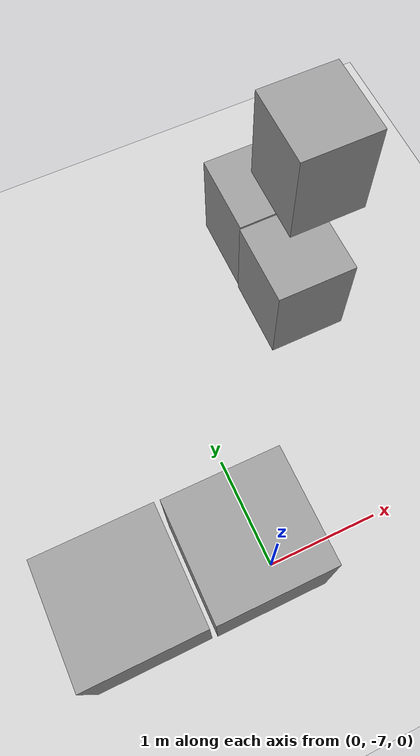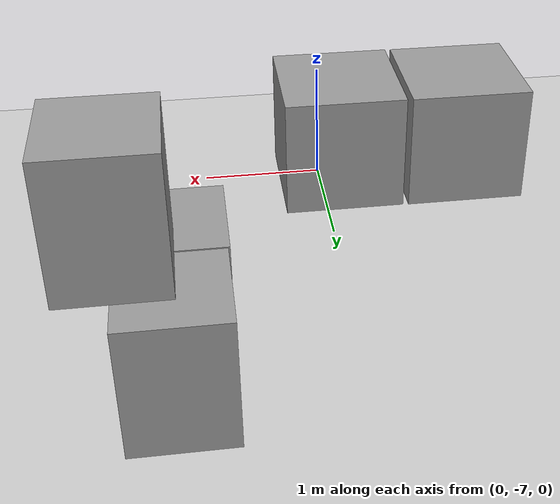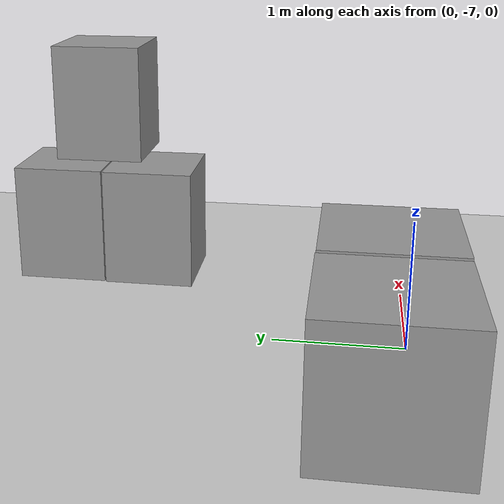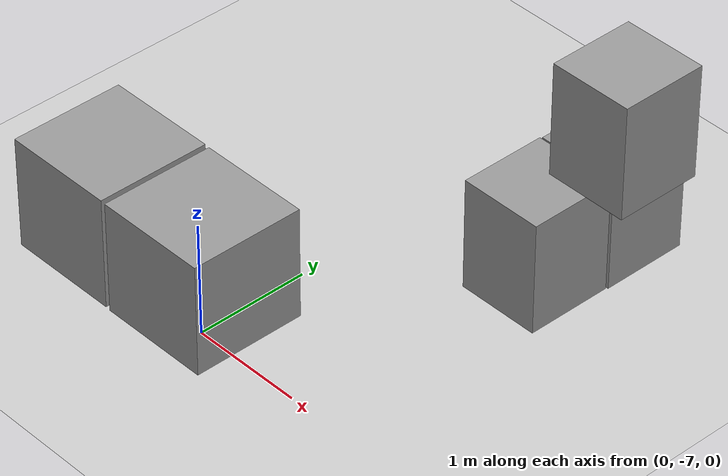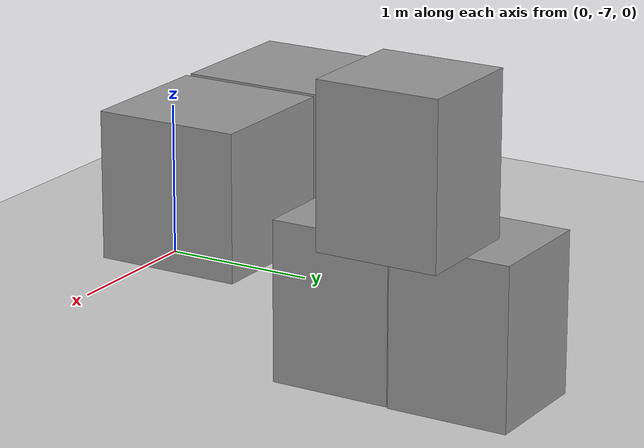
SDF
<sdf version="1.6">
 <world name="default">
  <model name="ground_plane">
   <static>1</static>
   <link name="link">
    <collision name="collision">
     <geometry><plane><normal>0 0 1</normal><size>100 100</size></plane></geometry>
     <surface><friction><ode><mu>100</mu><mu2>50</mu2></ode></friction></surface>
    </collision>
    <visual name="visual">
     <cast_shadows>0</cast_shadows>
     <geometry><plane><normal>0 0 1</normal><size>100 100</size></plane></geometry>
     <material>
      <script><uri>file://media/materials/scripts/gazebo.material</uri><name>Gazebo/Grey</name></script>
     </material>
    </visual>
   </link>
  </model>
  <model name="unit_box_5">
   <pose>-1.1995 -6.82663 0.499995 1e-05 -0 0</pose>
   <link name="link">
    <inertial>
     <mass>1</mass>
     <inertia>
      <ixx>0.166667</ixx>
      <ixy>0</ixy>
      <ixz>0</ixz>
      <iyy>0.166667</iyy>
      <iyz>0</iyz>
      <izz>0.166667</izz>
     </inertia>
    </inertial>
    <collision name="collision"><geometry><box><size>1 1 1</size></box></geometry></collision>
    <visual name="visual">
     <geometry><box><size>1 1 1</size></box></geometry>
     <material>
      <script><name>Gazebo/Grey</name><uri>file://media/materials/scripts/gazebo.material</uri></script>
     </material>
    </visual>
   </link>
  </model>
  <model name="unit_box_6">
   <pose>-0.152464 -6.8319 0.499995 -1e-05 0 0</pose>
   <link name="link">
    <inertial>
     <mass>1</mass>
     <inertia>
      <ixx>0.166667</ixx>
      <ixy>0</ixy>
      <ixz>0</ixz>
      <iyy>0.166667</iyy>
      <iyz>0</iyz>
      <izz>0.166667</izz>
     </inertia>
    </inertial>
    <collision name="collision"><geometry><box><size>1 1 1</size></box></geometry></collision>
    <visual name="visual">
     <geometry><box><size>1 1 1</size></box></geometry>
     <material>
      <script><name>Gazebo/Grey</name><uri>file://media/materials/scripts/gazebo.material</uri></script>
     </material>
    </visual>
   </link>
  </model>
  <model name="unit_box_1_clone">
   <pose>1.27853 -4.82833 0.49987 9e-06 1.9e-05 6.3e-05</pose>
   <link name="link">
    <inertial>
     <mass>1</mass>
     <inertia>
      <ixx>0.166667</ixx>
      <ixy>0</ixy>
      <ixz>0</ixz>
      <iyy>0.166667</iyy>
      <iyz>0</iyz>
      <izz>0.166667</izz>
     </inertia>
    </inertial>
    <collision name="collision"><geometry><box><size>0.738798 0.764801 1</size></box></geometry></collision>
    <visual name="visual">
     <geometry><box><size>0.738798 0.764801 1</size></box></geometry>
     <material>
      <script><name>Gazebo/Grey</name><uri>file://media/materials/scripts/gazebo.material</uri></script>
     </material>
    </visual>
   </link>
  </model>
  <model name="unit_box_1_clone_1">
   <pose>1.29135 -4.05061 0.500015 1.4e-05 2.5e-05 5.5e-05</pose>
   <link name="link">
    <inertial>
     <mass>1</mass>
     <inertia>
      <ixx>0.166667</ixx>
      <ixy>0</ixy>
      <ixz>0</ixz>
      <iyy>0.166667</iyy>
      <iyz>0</iyz>
      <izz>0.166667</izz>
     </inertia>
    </inertial>
    <collision name="collision"><geometry><box><size>0.738798 0.764801 1</size></box></geometry></collision>
    <visual name="visual">
     <geometry><box><size>0.738798 0.764801 1</size></box></geometry>
     <material>
      <script><name>Gazebo/Grey</name><uri>file://media/materials/scripts/gazebo.material</uri></script>
     </material>
    </visual>
   </link>
  </model>
  <model name="unit_box_1_clone_2">
   <pose>1.6377 -4.3212 1.50001 1e-05 0.000203 0.000392</pose>
   <link name="link">
    <inertial>
     <mass>1</mass>
     <inertia>
      <ixx>0.166667</ixx>
      <ixy>0</ixy>
      <ixz>0</ixz>
      <iyy>0.166667</iyy>
      <iyz>0</iyz>
      <izz>0.166667</izz>
     </inertia>
    </inertial>
    <collision name="collision"><geometry><box><size>0.738798 0.764801 1</size></box></geometry></collision>
    <visual name="visual">
     <geometry><box><size>0.738798 0.764801 1</size></box></geometry>
     <material>
      <script><name>Gazebo/Grey</name><uri>file://media/materials/scripts/gazebo.material</uri></script>
     </material>
    </visual>
   </link>
  </model>
 </world>
</sdf>
